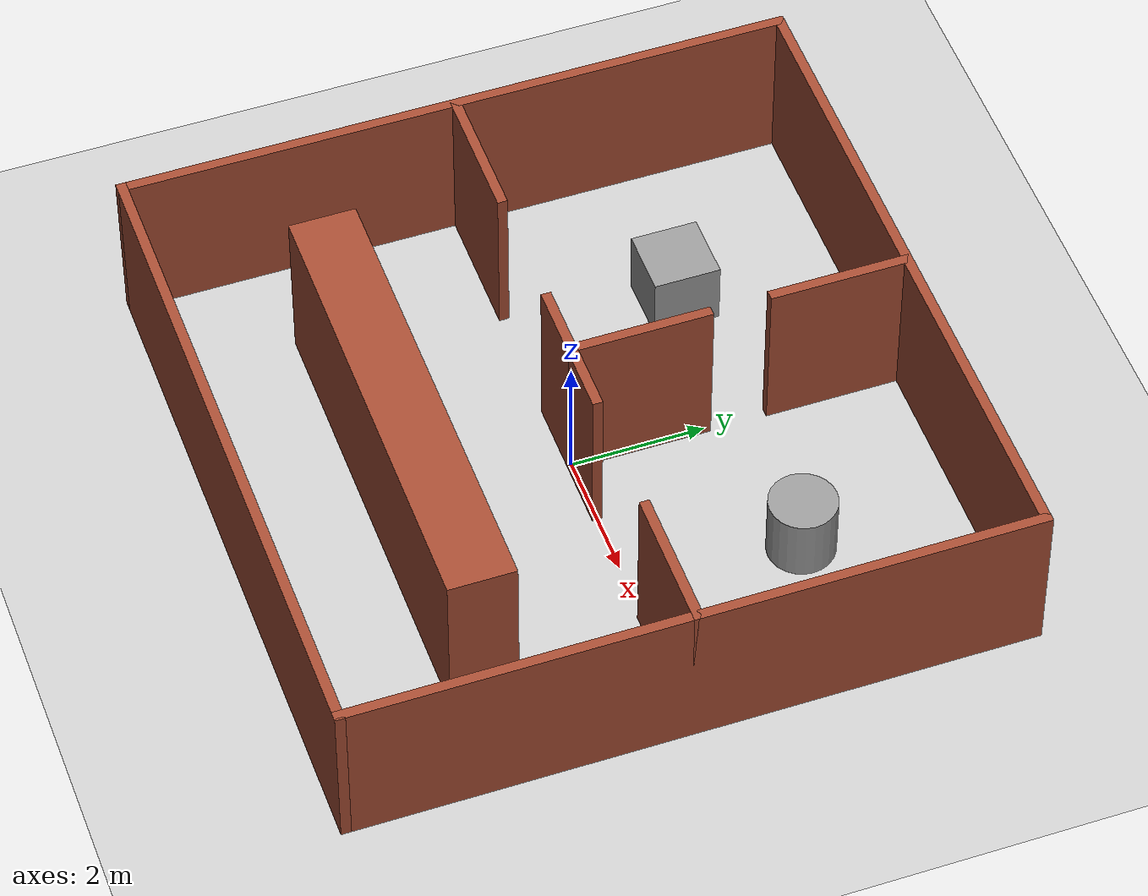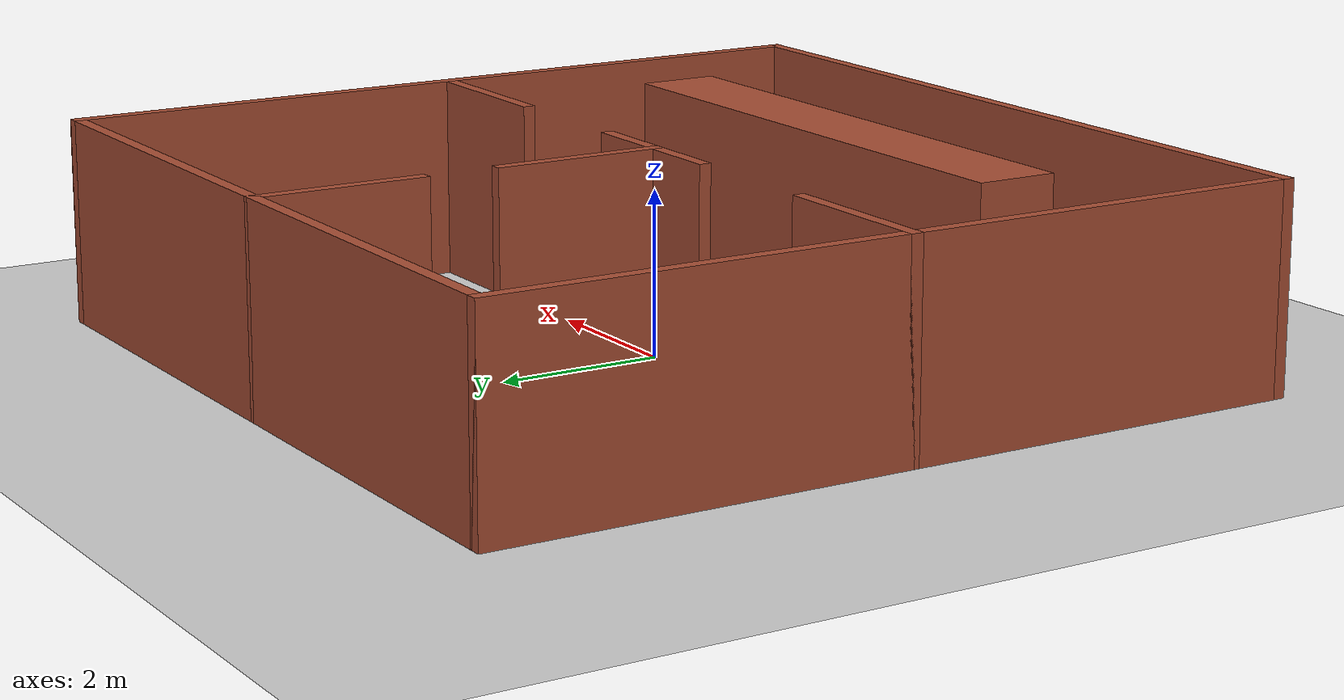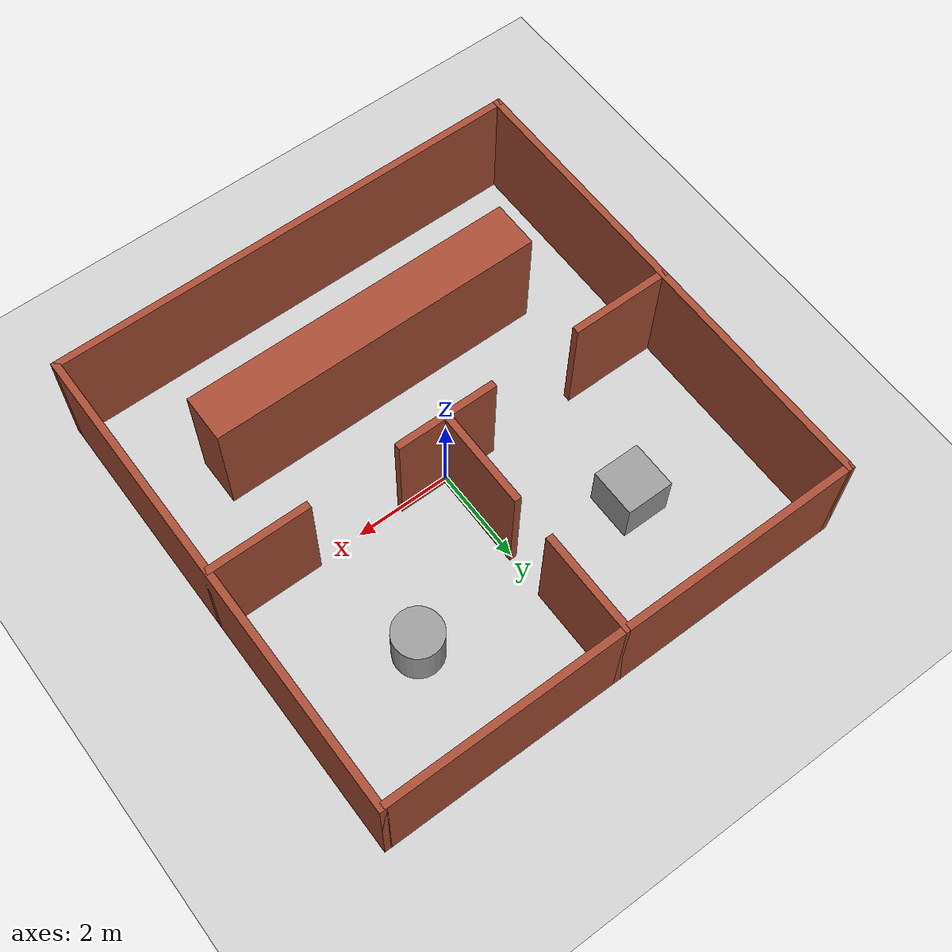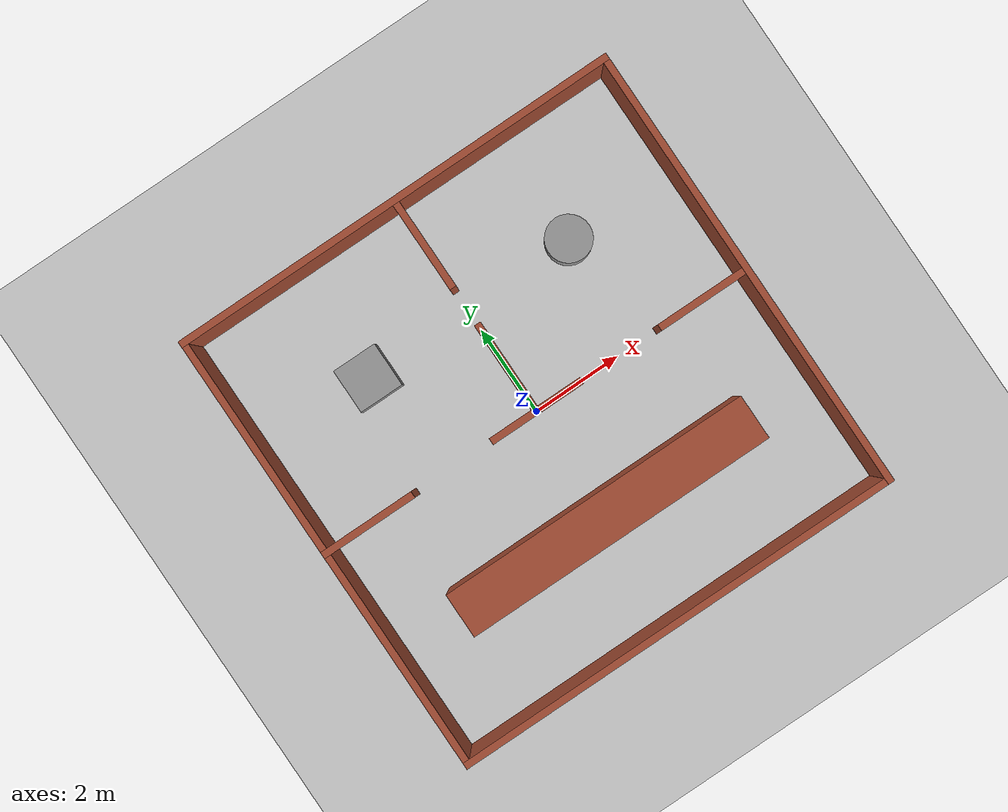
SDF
<sdf version="1.7">
 <world name="default">
  <gravity>0 0 -9.8</gravity>
  <magnetic_field>6e-06 2.3e-05 -4.2e-05</magnetic_field>
  <atmosphere type="adiabatic"/>
  <light name="sun" type="directional">
   <pose>0 0 10 0 -0 0</pose>
   <diffuse>0.8 0.8 0.8 1</diffuse>
   <specular>0.2 0.2 0.2 1</specular>
   <attenuation>
    <range>1000</range>
    <constant>0.9</constant>
    <linear>0.01</linear>
    <quadratic>0.001</quadratic>
   </attenuation>
   <direction>-0.5 0.1 -0.9</direction>
   <spot><inner_angle>0</inner_angle><outer_angle>0</outer_angle><falloff>0</falloff></spot>
  </light>
  <model name="ground_plane">
   <static>1</static>
   <link name="link">
    <collision name="collision">
     <geometry><plane><normal>0 0 1</normal><size>100 100</size></plane></geometry>
     <surface>
      <contact><collide_bitmask>65535</collide_bitmask></contact>
      <friction><ode><mu>100</mu><mu2>50</mu2></ode></friction>
     </surface>
    </collision>
    <visual name="visual">
     <cast_shadows>0</cast_shadows>
     <geometry><plane><normal>0 0 1</normal><size>100 100</size></plane></geometry>
     <material>
      <script><uri>file://media/materials/scripts/gazebo.material</uri><name>Gazebo/Grey</name></script>
     </material>
    </visual>
   </link>
  </model>
  <physics type="ode">
   <max_step_size>0.001</max_step_size>
   <real_time_factor>2</real_time_factor>
   <real_time_update_rate>2000</real_time_update_rate>
  </physics>
  <scene><ambient>0.4 0.4 0.4 1</ambient><background>0.7 0.7 0.7 1</background><shadows>1</shadows></scene>
  <spherical_coordinates>
   <surface_model>EARTH_WGS84</surface_model>
   <latitude_deg>0</latitude_deg>
   <longitude_deg>0</longitude_deg>
   <elevation>0</elevation>
   <heading_deg>0</heading_deg>
  </spherical_coordinates>
  <model name="Env2_Walls">
   <link name="Wall_0">
    <collision name="Wall_0_Collision">
     <geometry><box><size>10.15 0.15 2.5</size></box></geometry>
     <pose>0 0 1.25 0 -0 0</pose>
    </collision>
    <visual name="Wall_0_Visual">
     <pose>0 0 1.25 0 -0 0</pose>
     <geometry><box><size>10.15 0.15 2.5</size></box></geometry>
     <material>
      <script><uri>file://media/materials/scripts/gazebo.material</uri><name>Gazebo/Bricks</name></script>
      <ambient>1 1 1 1</ambient>
     </material>
     <meta><layer>0</layer></meta>
    </visual>
    <pose>0 5 0 0 -0 0</pose>
   </link>
   <link name="Wall_1">
    <collision name="Wall_1_Collision">
     <geometry><box><size>10.15 0.15 2.5</size></box></geometry>
     <pose>0 0 1.25 0 -0 0</pose>
    </collision>
    <visual name="Wall_1_Visual">
     <pose>0 0 1.25 0 -0 0</pose>
     <geometry><box><size>10.15 0.15 2.5</size></box></geometry>
     <material>
      <script><uri>file://media/materials/scripts/gazebo.material</uri><name>Gazebo/Bricks</name></script>
      <ambient>1 1 1 1</ambient>
     </material>
     <meta><layer>0</layer></meta>
    </visual>
    <pose>5 0 0 0 -0 -1.5708</pose>
   </link>
   <link name="Wall_11">
    <collision name="Wall_11_Collision">
     <geometry><box><size>2.15 0.15 2.5</size></box></geometry>
     <pose>0 0 1.25 0 -0 0</pose>
    </collision>
    <visual name="Wall_11_Visual">
     <pose>0 0 1.25 0 -0 0</pose>
     <geometry><box><size>2.15 0.15 2.5</size></box></geometry>
     <material>
      <script><uri>file://media/materials/scripts/gazebo.material</uri><name>Gazebo/Bricks</name></script>
      <ambient>1 1 1 1</ambient>
     </material>
     <meta><layer>0</layer></meta>
    </visual>
    <pose>0 1 0 0 -0 1.5708</pose>
   </link>
   <link name="Wall_13">
    <collision name="Wall_13_Collision">
     <geometry><box><size>2.15 0.15 2.5</size></box></geometry>
     <pose>0 0 1.25 0 -0 0</pose>
    </collision>
    <visual name="Wall_13_Visual">
     <pose>0 0 1.25 0 -0 0</pose>
     <geometry><box><size>2.15 0.15 2.5</size></box></geometry>
     <material>
      <script><uri>file://media/materials/scripts/gazebo.material</uri><name>Gazebo/Bricks</name></script>
      <ambient>1 1 1 1</ambient>
     </material>
     <meta><layer>0</layer></meta>
    </visual>
    <pose>4 0 0 0 -0 0</pose>
   </link>
   <link name="Wall_15">
    <collision name="Wall_15_Collision">
     <geometry><box><size>2.15 0.15 2.5</size></box></geometry>
     <pose>0 0 1.25 0 -0 0</pose>
    </collision>
    <visual name="Wall_15_Visual">
     <pose>0 0 1.25 0 -0 0</pose>
     <geometry><box><size>2.15 0.15 2.5</size></box></geometry>
     <material>
      <script><uri>file://media/materials/scripts/gazebo.material</uri><name>Gazebo/Bricks</name></script>
      <ambient>1 1 1 1</ambient>
     </material>
     <meta><layer>0</layer></meta>
    </visual>
    <pose>-4 0 0 0 -0 3.14159</pose>
   </link>
   <link name="Wall_17">
    <collision name="Wall_17_Collision">
     <geometry><box><size>2.15 0.15 2.5</size></box></geometry>
     <pose>0 0 1.25 0 -0 0</pose>
    </collision>
    <visual name="Wall_17_Visual">
     <pose>0 0 1.25 0 -0 0</pose>
     <geometry><box><size>2.15 0.15 2.5</size></box></geometry>
     <material>
      <script><uri>file://media/materials/scripts/gazebo.material</uri><name>Gazebo/Bricks</name></script>
      <ambient>1 1 1 1</ambient>
     </material>
     <meta><layer>0</layer></meta>
    </visual>
    <pose>0 4 0 0 -0 1.5708</pose>
   </link>
   <link name="Wall_19">
    <collision name="Wall_19_Collision">
     <geometry><box><size>7 1 2.5</size></box></geometry>
     <pose>0 0 1.25 0 -0 0</pose>
    </collision>
    <visual name="Wall_19_Visual">
     <pose>0 0 1.25 0 -0 0</pose>
     <geometry><box><size>7 1 2.5</size></box></geometry>
     <material>
      <script><uri>file://media/materials/scripts/gazebo.material</uri><name>Gazebo/Bricks</name></script>
      <ambient>1 1 1 1</ambient>
     </material>
     <meta><layer>0</layer></meta>
    </visual>
    <pose>0 -2.5 0 0 -0 0</pose>
   </link>
   <link name="Wall_2">
    <collision name="Wall_2_Collision">
     <geometry><box><size>10.15 0.15 2.5</size></box></geometry>
     <pose>0 0 1.25 0 -0 0</pose>
    </collision>
    <visual name="Wall_2_Visual">
     <pose>0 0 1.25 0 -0 0</pose>
     <geometry><box><size>10.15 0.15 2.5</size></box></geometry>
     <material>
      <script><uri>file://media/materials/scripts/gazebo.material</uri><name>Gazebo/Bricks</name></script>
      <ambient>1 1 1 1</ambient>
     </material>
     <meta><layer>0</layer></meta>
    </visual>
    <pose>0 -5 0 0 -0 3.14159</pose>
   </link>
   <link name="Wall_3">
    <collision name="Wall_3_Collision">
     <geometry><box><size>10.15 0.15 2.5</size></box></geometry>
     <pose>0 0 1.25 0 -0 0</pose>
    </collision>
    <visual name="Wall_3_Visual">
     <pose>0 0 1.25 0 -0 0</pose>
     <geometry><box><size>10.15 0.15 2.5</size></box></geometry>
     <material>
      <script><uri>file://media/materials/scripts/gazebo.material</uri><name>Gazebo/Bricks</name></script>
      <ambient>1 1 1 1</ambient>
     </material>
     <meta><layer>0</layer></meta>
    </visual>
    <pose>-5 0 0 0 -0 1.5708</pose>
   </link>
   <link name="Wall_6">
    <collision name="Wall_6_Collision">
     <geometry><box><size>1.15 0.15 2.5</size></box></geometry>
     <pose>0 0 1.25 0 -0 0</pose>
    </collision>
    <visual name="Wall_6_Visual">
     <pose>0 0 1.25 0 -0 0</pose>
     <geometry><box><size>1.15 0.15 2.5</size></box></geometry>
     <material>
      <script><uri>file://media/materials/scripts/gazebo.material</uri><name>Gazebo/Bricks</name></script>
      <ambient>1 1 1 1</ambient>
     </material>
     <meta><layer>0</layer></meta>
    </visual>
    <pose>0.5 0 0 0 -0 3.14159</pose>
   </link>
   <link name="Wall_9">
    <collision name="Wall_9_Collision">
     <geometry><box><size>1.15 0.15 2.5</size></box></geometry>
     <pose>0 0 1.25 0 -0 0</pose>
    </collision>
    <visual name="Wall_9_Visual">
     <pose>0 0 1.25 0 -0 0</pose>
     <geometry><box><size>1.15 0.15 2.5</size></box></geometry>
     <material>
      <script><uri>file://media/materials/scripts/gazebo.material</uri><name>Gazebo/Bricks</name></script>
      <ambient>1 1 1 1</ambient>
     </material>
     <meta><layer>0</layer></meta>
    </visual>
    <pose>-0.5 0 0 0 -0 3.14159</pose>
   </link>
   <static>1</static>
  </model>
  <model name="Env2_Obstacles">
   <link name="link_0">
    <inertial>
     <mass>100</mass>
     <inertia><ixx>14.5833</ixx><ixy>0</ixy><ixz>0</ixz><iyy>14.5833</iyy><iyz>0</iyz><izz>12.5</izz></inertia>
    </inertial>
    <pose>2.46773 0.030105 0 0 -0 0</pose>
    <visual name="visual">
     <geometry><cylinder><radius>0.5</radius><length>1</length></cylinder></geometry>
     <material>
      <lighting>1</lighting>
      <script><uri>file://media/materials/scripts/gazebo.material</uri><name>Gazebo/Grey</name></script>
      <shader type="pixel"><normal_map>__default__</normal_map></shader>
     </material>
    </visual>
    <collision name="collision">
     <geometry><cylinder><radius>0.5</radius><length>1</length></cylinder></geometry>
     <surface>
      <friction>
       <ode><mu>1</mu><mu2>1</mu2><fdir1>0 0 0</fdir1><slip1>0</slip1><slip2>0</slip2></ode>
       <torsional>
        <coefficient>1</coefficient>
        <patch_radius>0</patch_radius>
        <surface_radius>0</surface_radius>
        <use_patch_radius>1</use_patch_radius>
        <ode><slip>0</slip></ode>
       </torsional>
      </friction>
      <bounce><restitution_coefficient>0</restitution_coefficient><threshold>1e+06</threshold></bounce>
      <contact>
       <collide_without_contact>0</collide_without_contact>
       <collide_without_contact_bitmask>1</collide_without_contact_bitmask>
       <collide_bitmask>1</collide_bitmask>
       <ode>
        <soft_cfm>0</soft_cfm>
        <soft_erp>0.2</soft_erp>
        <kp>1e+13</kp>
        <kd>1</kd>
        <max_vel>0.01</max_vel>
        <min_depth>0</min_depth>
       </ode>
       <bullet>
        <split_impulse>1</split_impulse>
        <split_impulse_penetration_threshold>-0.01</split_impulse_penetration_threshold>
        <soft_cfm>0</soft_cfm>
        <soft_erp>0.2</soft_erp>
        <kp>1e+13</kp>
        <kd>1</kd>
       </bullet>
      </contact>
     </surface>
    </collision>
   </link>
   <link name="link_1">
    <inertial>
     <mass>100</mass>
     <inertia><ixx>16.6667</ixx><ixy>0</ixy><ixz>0</ixz><iyy>16.6667</iyy><iyz>0</iyz><izz>16.6667</izz></inertia>
    </inertial>
    <pose>-2.46773 -0.030105 0 0 -0 0</pose>
    <visual name="visual">
     <geometry><box><size>1 1 1</size></box></geometry>
     <material>
      <lighting>1</lighting>
      <script><uri>file://media/materials/scripts/gazebo.material</uri><name>Gazebo/Grey</name></script>
      <shader type="pixel"><normal_map>__default__</normal_map></shader>
     </material>
    </visual>
    <collision name="collision">
     <geometry><box><size>1 1 1</size></box></geometry>
     <surface>
      <friction>
       <ode><mu>1</mu><mu2>1</mu2><fdir1>0 0 0</fdir1><slip1>0</slip1><slip2>0</slip2></ode>
       <torsional>
        <coefficient>1</coefficient>
        <patch_radius>0</patch_radius>
        <surface_radius>0</surface_radius>
        <use_patch_radius>1</use_patch_radius>
        <ode><slip>0</slip></ode>
       </torsional>
      </friction>
      <bounce><restitution_coefficient>0</restitution_coefficient><threshold>1e+06</threshold></bounce>
      <contact>
       <collide_without_contact>0</collide_without_contact>
       <collide_without_contact_bitmask>1</collide_without_contact_bitmask>
       <collide_bitmask>1</collide_bitmask>
       <ode>
        <soft_cfm>0</soft_cfm>
        <soft_erp>0.2</soft_erp>
        <kp>1e+13</kp>
        <kd>1</kd>
        <max_vel>0.01</max_vel>
        <min_depth>0</min_depth>
       </ode>
       <bullet>
        <split_impulse>1</split_impulse>
        <split_impulse_penetration_threshold>-0.01</split_impulse_penetration_threshold>
        <soft_cfm>0</soft_cfm>
        <soft_erp>0.2</soft_erp>
        <kp>1e+13</kp>
        <kd>1</kd>
       </bullet>
      </contact>
     </surface>
    </collision>
   </link>
   <static>0</static>
   <pose>0.023595 2.49058 0.5 0 -0 0</pose>
  </model>
 </world>
</sdf>
